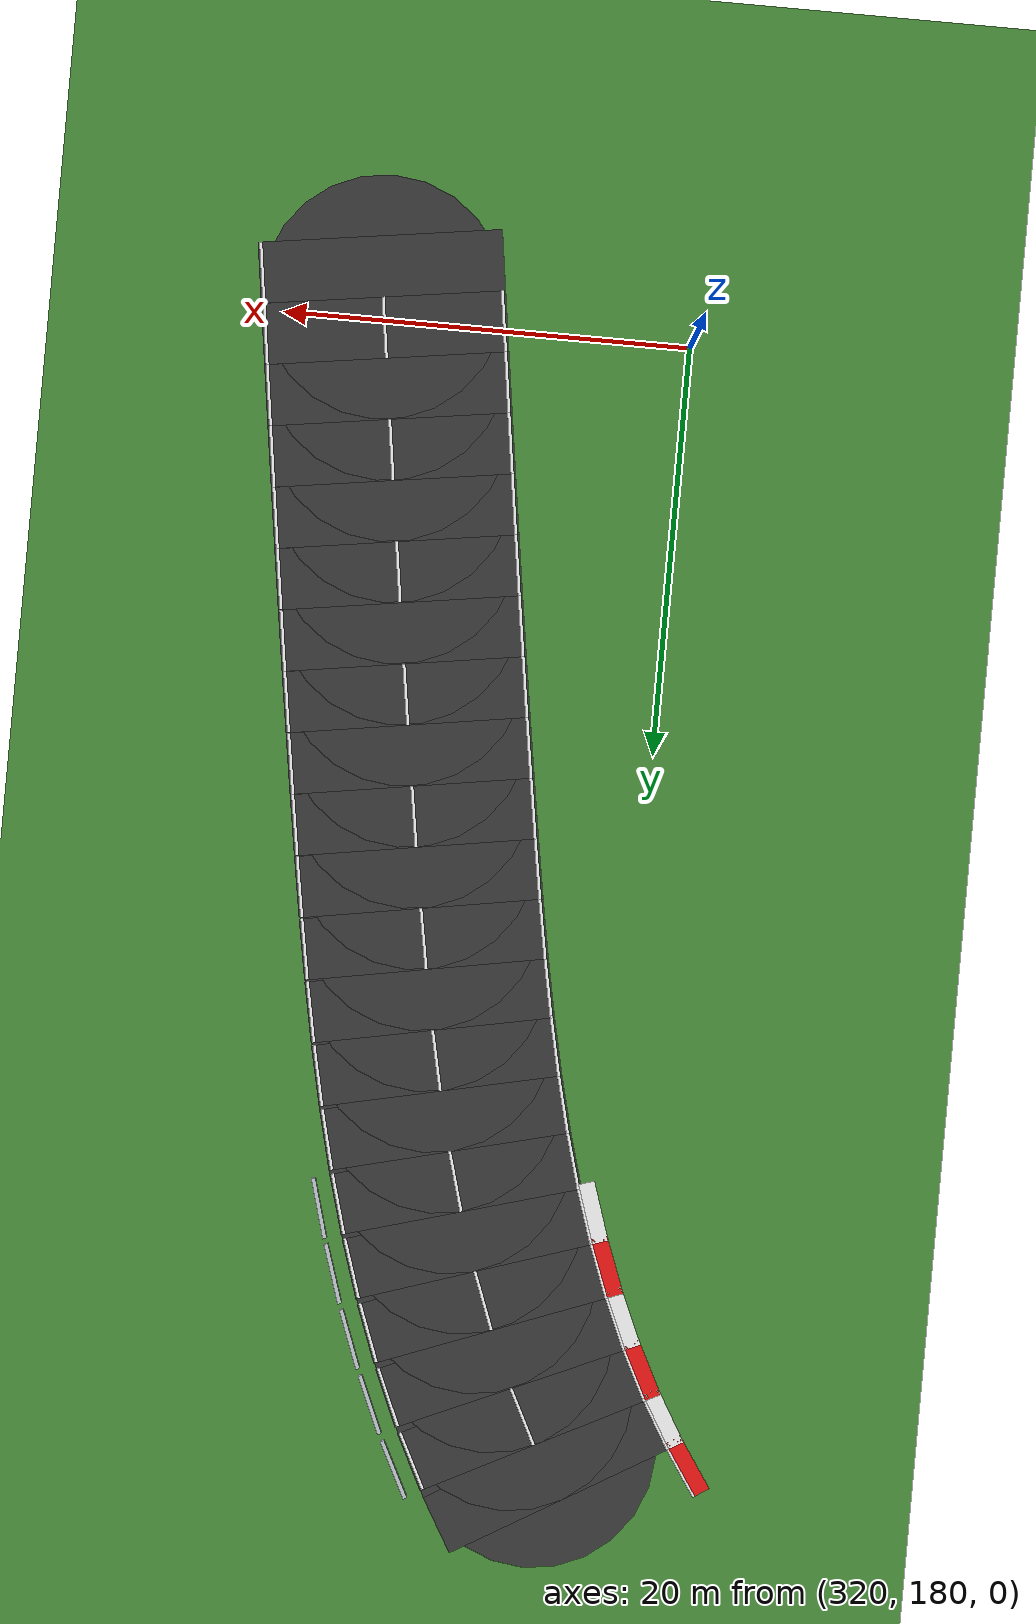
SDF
<sdf version="1.6">
 <world name="sem_silesia_ring_2026">
  <model name="ground_plane">
   <static>true</static>
   <link name="link">
    <collision name="collision">
     <geometry><plane><normal>0 0 1</normal><size>1200 1200</size></plane></geometry>
     <surface><friction><ode><mu>0.6</mu><mu2>0.6</mu2></ode></friction></surface>
    </collision>
    <visual name="visual">
     <geometry><plane><normal>0 0 1</normal><size>1200 1200</size></plane></geometry>
     <material><ambient>0.28 0.55 0.22 1</ambient><diffuse>0.28 0.55 0.22 1</diffuse></material>
    </visual>
   </link>
  </model>
  <model name="road_s177">
   <static>true</static>
   <pose>335.4171 177.3206 0.0030 0 0 1.7136</pose>
   <link name="link">
    <visual name="v">
     <geometry><box><size>3.0025 12.0000 0.0060</size></box></geometry>
     <material><ambient>0.22 0.22 0.22 1</ambient><diffuse>0.22 0.22 0.22 1</diffuse></material>
    </visual>
    <collision name="c">
     <geometry><box><size>3.0025 12.0000 0.0060</size></box></geometry>
     <surface><friction><ode><mu>0.9</mu><mu2>0.9</mu2></ode></friction></surface>
    </collision>
   </link>
  </model>
  <model name="wl_R_s177">
   <static>true</static>
   <pose>341.2076 178.1529 0.0070 0 0 1.7136</pose>
   <link name="link">
    <visual name="v">
     <geometry><box><size>3.0025 0.1500 0.0080</size></box></geometry>
     <material><ambient>0.95 0.95 0.95 1</ambient><diffuse>0.95 0.95 0.95 1</diffuse></material>
    </visual>
   </link>
  </model>
  <model name="road_s178">
   <static>true</static>
   <pose>334.9890 180.2925 0.0030 0 0 1.7142</pose>
   <link name="link">
    <visual name="v">
     <geometry><box><size>3.0025 12.0000 0.0060</size></box></geometry>
     <material><ambient>0.22 0.22 0.22 1</ambient><diffuse>0.22 0.22 0.22 1</diffuse></material>
    </visual>
    <collision name="c">
     <geometry><box><size>3.0025 12.0000 0.0060</size></box></geometry>
     <surface><friction><ode><mu>0.9</mu><mu2>0.9</mu2></ode></friction></surface>
    </collision>
   </link>
  </model>
  <model name="road_jnt178">
   <static>true</static>
   <pose>335.2035 178.8066 0.0030 0 0 0</pose>
   <link name="link">
    <visual name="v">
     <geometry><cylinder><radius>6.0000</radius><length>0.0060</length></cylinder></geometry>
     <material><ambient>0.22 0.22 0.22 1</ambient><diffuse>0.22 0.22 0.22 1</diffuse></material>
    </visual>
    <collision name="c">
     <geometry><cylinder><radius>6.0000</radius><length>0.0060</length></cylinder></geometry>
     <surface><friction><ode><mu>0.9</mu><mu2>0.9</mu2></ode></friction></surface>
    </collision>
   </link>
  </model>
  <model name="wl_L_s178">
   <static>true</static>
   <pose>329.1990 179.4565 0.0070 0 0 1.7142</pose>
   <link name="link">
    <visual name="v">
     <geometry><box><size>3.0025 0.1500 0.0080</size></box></geometry>
     <material><ambient>0.95 0.95 0.95 1</ambient><diffuse>0.95 0.95 0.95 1</diffuse></material>
    </visual>
   </link>
  </model>
  <model name="wl_R_s178">
   <static>true</static>
   <pose>340.7790 181.1284 0.0070 0 0 1.7142</pose>
   <link name="link">
    <visual name="v">
     <geometry><box><size>3.0025 0.1500 0.0080</size></box></geometry>
     <material><ambient>0.95 0.95 0.95 1</ambient><diffuse>0.95 0.95 0.95 1</diffuse></material>
    </visual>
   </link>
  </model>
  <model name="cd_s178">
   <static>true</static>
   <pose>334.9890 180.2925 0.0070 0 0 1.7142</pose>
   <link name="link">
    <visual name="v">
     <geometry><box><size>3.0025 0.1500 0.0080</size></box></geometry>
     <material><ambient>0.95 0.95 0.95 1</ambient><diffuse>0.95 0.95 0.95 1</diffuse></material>
    </visual>
   </link>
  </model>
  <model name="road_s179">
   <static>true</static>
   <pose>334.5585 183.2640 0.0030 0 0 1.7152</pose>
   <link name="link">
    <visual name="v">
     <geometry><box><size>3.0025 12.0000 0.0060</size></box></geometry>
     <material><ambient>0.22 0.22 0.22 1</ambient><diffuse>0.22 0.22 0.22 1</diffuse></material>
    </visual>
    <collision name="c">
     <geometry><box><size>3.0025 12.0000 0.0060</size></box></geometry>
     <surface><friction><ode><mu>0.9</mu><mu2>0.9</mu2></ode></friction></surface>
    </collision>
   </link>
  </model>
  <model name="road_jnt179">
   <static>true</static>
   <pose>334.7745 181.7783 0.0030 0 0 0</pose>
   <link name="link">
    <visual name="v">
     <geometry><cylinder><radius>6.0000</radius><length>0.0060</length></cylinder></geometry>
     <material><ambient>0.22 0.22 0.22 1</ambient><diffuse>0.22 0.22 0.22 1</diffuse></material>
    </visual>
    <collision name="c">
     <geometry><cylinder><radius>6.0000</radius><length>0.0060</length></cylinder></geometry>
     <surface><friction><ode><mu>0.9</mu><mu2>0.9</mu2></ode></friction></surface>
    </collision>
   </link>
  </model>
  <model name="wl_L_s179">
   <static>true</static>
   <pose>328.7694 182.4224 0.0070 0 0 1.7152</pose>
   <link name="link">
    <visual name="v">
     <geometry><box><size>3.0025 0.1500 0.0080</size></box></geometry>
     <material><ambient>0.95 0.95 0.95 1</ambient><diffuse>0.95 0.95 0.95 1</diffuse></material>
    </visual>
   </link>
  </model>
  <model name="wl_R_s179">
   <static>true</static>
   <pose>340.3477 184.1055 0.0070 0 0 1.7152</pose>
   <link name="link">
    <visual name="v">
     <geometry><box><size>3.0025 0.1500 0.0080</size></box></geometry>
     <material><ambient>0.95 0.95 0.95 1</ambient><diffuse>0.95 0.95 0.95 1</diffuse></material>
    </visual>
   </link>
  </model>
  <model name="road_s180">
   <static>true</static>
   <pose>334.1246 186.2350 0.0030 0 0 1.7165</pose>
   <link name="link">
    <visual name="v">
     <geometry><box><size>3.0025 12.0000 0.0060</size></box></geometry>
     <material><ambient>0.22 0.22 0.22 1</ambient><diffuse>0.22 0.22 0.22 1</diffuse></material>
    </visual>
    <collision name="c">
     <geometry><box><size>3.0025 12.0000 0.0060</size></box></geometry>
     <surface><friction><ode><mu>0.9</mu><mu2>0.9</mu2></ode></friction></surface>
    </collision>
   </link>
  </model>
  <model name="road_jnt180">
   <static>true</static>
   <pose>334.3425 184.7496 0.0030 0 0 0</pose>
   <link name="link">
    <visual name="v">
     <geometry><cylinder><radius>6.0000</radius><length>0.0060</length></cylinder></geometry>
     <material><ambient>0.22 0.22 0.22 1</ambient><diffuse>0.22 0.22 0.22 1</diffuse></material>
    </visual>
    <collision name="c">
     <geometry><cylinder><radius>6.0000</radius><length>0.0060</length></cylinder></geometry>
     <surface><friction><ode><mu>0.9</mu><mu2>0.9</mu2></ode></friction></surface>
    </collision>
   </link>
  </model>
  <model name="wl_L_s180">
   <static>true</static>
   <pose>328.3366 185.3858 0.0070 0 0 1.7165</pose>
   <link name="link">
    <visual name="v">
     <geometry><box><size>3.0025 0.1500 0.0080</size></box></geometry>
     <material><ambient>0.95 0.95 0.95 1</ambient><diffuse>0.95 0.95 0.95 1</diffuse></material>
    </visual>
   </link>
  </model>
  <model name="wl_R_s180">
   <static>true</static>
   <pose>339.9127 187.0842 0.0070 0 0 1.7165</pose>
   <link name="link">
    <visual name="v">
     <geometry><box><size>3.0025 0.1500 0.0080</size></box></geometry>
     <material><ambient>0.95 0.95 0.95 1</ambient><diffuse>0.95 0.95 0.95 1</diffuse></material>
    </visual>
   </link>
  </model>
  <model name="cd_s180">
   <static>true</static>
   <pose>334.1246 186.2350 0.0070 0 0 1.7165</pose>
   <link name="link">
    <visual name="v">
     <geometry><box><size>3.0025 0.1500 0.0080</size></box></geometry>
     <material><ambient>0.95 0.95 0.95 1</ambient><diffuse>0.95 0.95 0.95 1</diffuse></material>
    </visual>
   </link>
  </model>
  <model name="road_s181">
   <static>true</static>
   <pose>333.6863 189.2054 0.0030 0 0 1.7181</pose>
   <link name="link">
    <visual name="v">
     <geometry><box><size>3.0025 12.0000 0.0060</size></box></geometry>
     <material><ambient>0.22 0.22 0.22 1</ambient><diffuse>0.22 0.22 0.22 1</diffuse></material>
    </visual>
    <collision name="c">
     <geometry><box><size>3.0025 12.0000 0.0060</size></box></geometry>
     <surface><friction><ode><mu>0.9</mu><mu2>0.9</mu2></ode></friction></surface>
    </collision>
   </link>
  </model>
  <model name="road_jnt181">
   <static>true</static>
   <pose>333.9067 187.7204 0.0030 0 0 0</pose>
   <link name="link">
    <visual name="v">
     <geometry><cylinder><radius>6.0000</radius><length>0.0060</length></cylinder></geometry>
     <material><ambient>0.22 0.22 0.22 1</ambient><diffuse>0.22 0.22 0.22 1</diffuse></material>
    </visual>
    <collision name="c">
     <geometry><cylinder><radius>6.0000</radius><length>0.0060</length></cylinder></geometry>
     <surface><friction><ode><mu>0.9</mu><mu2>0.9</mu2></ode></friction></surface>
    </collision>
   </link>
  </model>
  <model name="wl_L_s181">
   <static>true</static>
   <pose>327.8997 188.3466 0.0070 0 0 1.7181</pose>
   <link name="link">
    <visual name="v">
     <geometry><box><size>3.0025 0.1500 0.0080</size></box></geometry>
     <material><ambient>0.95 0.95 0.95 1</ambient><diffuse>0.95 0.95 0.95 1</diffuse></material>
    </visual>
   </link>
  </model>
  <model name="wl_R_s181">
   <static>true</static>
   <pose>339.4730 190.0641 0.0070 0 0 1.7181</pose>
   <link name="link">
    <visual name="v">
     <geometry><box><size>3.0025 0.1500 0.0080</size></box></geometry>
     <material><ambient>0.95 0.95 0.95 1</ambient><diffuse>0.95 0.95 0.95 1</diffuse></material>
    </visual>
   </link>
  </model>
  <model name="road_s182">
   <static>true</static>
   <pose>333.2426 192.1749 0.0030 0 0 1.7201</pose>
   <link name="link">
    <visual name="v">
     <geometry><box><size>3.0025 12.0000 0.0060</size></box></geometry>
     <material><ambient>0.22 0.22 0.22 1</ambient><diffuse>0.22 0.22 0.22 1</diffuse></material>
    </visual>
    <collision name="c">
     <geometry><box><size>3.0025 12.0000 0.0060</size></box></geometry>
     <surface><friction><ode><mu>0.9</mu><mu2>0.9</mu2></ode></friction></surface>
    </collision>
   </link>
  </model>
  <model name="road_jnt182">
   <static>true</static>
   <pose>333.4659 190.6904 0.0030 0 0 0</pose>
   <link name="link">
    <visual name="v">
     <geometry><cylinder><radius>6.0000</radius><length>0.0060</length></cylinder></geometry>
     <material><ambient>0.22 0.22 0.22 1</ambient><diffuse>0.22 0.22 0.22 1</diffuse></material>
    </visual>
    <collision name="c">
     <geometry><cylinder><radius>6.0000</radius><length>0.0060</length></cylinder></geometry>
     <surface><friction><ode><mu>0.9</mu><mu2>0.9</mu2></ode></friction></surface>
    </collision>
   </link>
  </model>
  <model name="wl_L_s182">
   <static>true</static>
   <pose>327.4577 191.3046 0.0070 0 0 1.7201</pose>
   <link name="link">
    <visual name="v">
     <geometry><box><size>3.0025 0.1500 0.0080</size></box></geometry>
     <material><ambient>0.95 0.95 0.95 1</ambient><diffuse>0.95 0.95 0.95 1</diffuse></material>
    </visual>
   </link>
  </model>
  <model name="wl_R_s182">
   <static>true</static>
   <pose>339.0275 193.0452 0.0070 0 0 1.7201</pose>
   <link name="link">
    <visual name="v">
     <geometry><box><size>3.0025 0.1500 0.0080</size></box></geometry>
     <material><ambient>0.95 0.95 0.95 1</ambient><diffuse>0.95 0.95 0.95 1</diffuse></material>
    </visual>
   </link>
  </model>
  <model name="cd_s182">
   <static>true</static>
   <pose>333.2426 192.1749 0.0070 0 0 1.7201</pose>
   <link name="link">
    <visual name="v">
     <geometry><box><size>3.0025 0.1500 0.0080</size></box></geometry>
     <material><ambient>0.95 0.95 0.95 1</ambient><diffuse>0.95 0.95 0.95 1</diffuse></material>
    </visual>
   </link>
  </model>
  <model name="road_s183">
   <static>true</static>
   <pose>332.7925 195.1435 0.0030 0 0 1.7225</pose>
   <link name="link">
    <visual name="v">
     <geometry><box><size>3.0025 12.0000 0.0060</size></box></geometry>
     <material><ambient>0.22 0.22 0.22 1</ambient><diffuse>0.22 0.22 0.22 1</diffuse></material>
    </visual>
    <collision name="c">
     <geometry><box><size>3.0025 12.0000 0.0060</size></box></geometry>
     <surface><friction><ode><mu>0.9</mu><mu2>0.9</mu2></ode></friction></surface>
    </collision>
   </link>
  </model>
  <model name="road_jnt183">
   <static>true</static>
   <pose>333.0193 193.6595 0.0030 0 0 0</pose>
   <link name="link">
    <visual name="v">
     <geometry><cylinder><radius>6.0000</radius><length>0.0060</length></cylinder></geometry>
     <material><ambient>0.22 0.22 0.22 1</ambient><diffuse>0.22 0.22 0.22 1</diffuse></material>
    </visual>
    <collision name="c">
     <geometry><cylinder><radius>6.0000</radius><length>0.0060</length></cylinder></geometry>
     <surface><friction><ode><mu>0.9</mu><mu2>0.9</mu2></ode></friction></surface>
    </collision>
   </link>
  </model>
  <model name="wl_L_s183">
   <static>true</static>
   <pose>327.0096 194.2598 0.0070 0 0 1.7225</pose>
   <link name="link">
    <visual name="v">
     <geometry><box><size>3.0025 0.1500 0.0080</size></box></geometry>
     <material><ambient>0.95 0.95 0.95 1</ambient><diffuse>0.95 0.95 0.95 1</diffuse></material>
    </visual>
   </link>
  </model>
  <model name="wl_R_s183">
   <static>true</static>
   <pose>338.5753 196.0273 0.0070 0 0 1.7225</pose>
   <link name="link">
    <visual name="v">
     <geometry><box><size>3.0025 0.1500 0.0080</size></box></geometry>
     <material><ambient>0.95 0.95 0.95 1</ambient><diffuse>0.95 0.95 0.95 1</diffuse></material>
    </visual>
   </link>
  </model>
  <model name="road_s184">
   <static>true</static>
   <pose>332.3349 198.1110 0.0030 0 0 1.7251</pose>
   <link name="link">
    <visual name="v">
     <geometry><box><size>3.0025 12.0000 0.0060</size></box></geometry>
     <material><ambient>0.22 0.22 0.22 1</ambient><diffuse>0.22 0.22 0.22 1</diffuse></material>
    </visual>
    <collision name="c">
     <geometry><box><size>3.0025 12.0000 0.0060</size></box></geometry>
     <surface><friction><ode><mu>0.9</mu><mu2>0.9</mu2></ode></friction></surface>
    </collision>
   </link>
  </model>
  <model name="road_jnt184">
   <static>true</static>
   <pose>332.5657 196.6276 0.0030 0 0 0</pose>
   <link name="link">
    <visual name="v">
     <geometry><cylinder><radius>6.0000</radius><length>0.0060</length></cylinder></geometry>
     <material><ambient>0.22 0.22 0.22 1</ambient><diffuse>0.22 0.22 0.22 1</diffuse></material>
    </visual>
    <collision name="c">
     <geometry><cylinder><radius>6.0000</radius><length>0.0060</length></cylinder></geometry>
     <surface><friction><ode><mu>0.9</mu><mu2>0.9</mu2></ode></friction></surface>
    </collision>
   </link>
  </model>
  <model name="wl_L_s184">
   <static>true</static>
   <pose>326.5544 197.2118 0.0070 0 0 1.7251</pose>
   <link name="link">
    <visual name="v">
     <geometry><box><size>3.0025 0.1500 0.0080</size></box></geometry>
     <material><ambient>0.95 0.95 0.95 1</ambient><diffuse>0.95 0.95 0.95 1</diffuse></material>
    </visual>
   </link>
  </model>
  <model name="wl_R_s184">
   <static>true</static>
   <pose>338.1154 199.0102 0.0070 0 0 1.7251</pose>
   <link name="link">
    <visual name="v">
     <geometry><box><size>3.0025 0.1500 0.0080</size></box></geometry>
     <material><ambient>0.95 0.95 0.95 1</ambient><diffuse>0.95 0.95 0.95 1</diffuse></material>
    </visual>
   </link>
  </model>
  <model name="cd_s184">
   <static>true</static>
   <pose>332.3349 198.1110 0.0070 0 0 1.7251</pose>
   <link name="link">
    <visual name="v">
     <geometry><box><size>3.0025 0.1500 0.0080</size></box></geometry>
     <material><ambient>0.95 0.95 0.95 1</ambient><diffuse>0.95 0.95 0.95 1</diffuse></material>
    </visual>
   </link>
  </model>
  <model name="road_s185">
   <static>true</static>
   <pose>331.8690 201.0772 0.0030 0 0 1.7281</pose>
   <link name="link">
    <visual name="v">
     <geometry><box><size>3.0025 12.0000 0.0060</size></box></geometry>
     <material><ambient>0.22 0.22 0.22 1</ambient><diffuse>0.22 0.22 0.22 1</diffuse></material>
    </visual>
    <collision name="c">
     <geometry><box><size>3.0025 12.0000 0.0060</size></box></geometry>
     <surface><friction><ode><mu>0.9</mu><mu2>0.9</mu2></ode></friction></surface>
    </collision>
   </link>
  </model>
  <model name="road_jnt185">
   <static>true</static>
   <pose>332.1042 199.5944 0.0030 0 0 0</pose>
   <link name="link">
    <visual name="v">
     <geometry><cylinder><radius>6.0000</radius><length>0.0060</length></cylinder></geometry>
     <material><ambient>0.22 0.22 0.22 1</ambient><diffuse>0.22 0.22 0.22 1</diffuse></material>
    </visual>
    <collision name="c">
     <geometry><cylinder><radius>6.0000</radius><length>0.0060</length></cylinder></geometry>
     <surface><friction><ode><mu>0.9</mu><mu2>0.9</mu2></ode></friction></surface>
    </collision>
   </link>
  </model>
  <model name="wl_L_s185">
   <static>true</static>
   <pose>326.0912 200.1607 0.0070 0 0 1.7281</pose>
   <link name="link">
    <visual name="v">
     <geometry><box><size>3.0025 0.1500 0.0080</size></box></geometry>
     <material><ambient>0.95 0.95 0.95 1</ambient><diffuse>0.95 0.95 0.95 1</diffuse></material>
    </visual>
   </link>
  </model>
  <model name="wl_R_s185">
   <static>true</static>
   <pose>337.6467 201.9936 0.0070 0 0 1.7281</pose>
   <link name="link">
    <visual name="v">
     <geometry><box><size>3.0025 0.1500 0.0080</size></box></geometry>
     <material><ambient>0.95 0.95 0.95 1</ambient><diffuse>0.95 0.95 0.95 1</diffuse></material>
    </visual>
   </link>
  </model>
  <model name="road_s186">
   <static>true</static>
   <pose>331.3936 204.0418 0.0030 0 0 1.7315</pose>
   <link name="link">
    <visual name="v">
     <geometry><box><size>3.0025 12.0000 0.0060</size></box></geometry>
     <material><ambient>0.22 0.22 0.22 1</ambient><diffuse>0.22 0.22 0.22 1</diffuse></material>
    </visual>
    <collision name="c">
     <geometry><box><size>3.0025 12.0000 0.0060</size></box></geometry>
     <surface><friction><ode><mu>0.9</mu><mu2>0.9</mu2></ode></friction></surface>
    </collision>
   </link>
  </model>
  <model name="road_jnt186">
   <static>true</static>
   <pose>331.6338 202.5599 0.0030 0 0 0</pose>
   <link name="link">
    <visual name="v">
     <geometry><cylinder><radius>6.0000</radius><length>0.0060</length></cylinder></geometry>
     <material><ambient>0.22 0.22 0.22 1</ambient><diffuse>0.22 0.22 0.22 1</diffuse></material>
    </visual>
    <collision name="c">
     <geometry><cylinder><radius>6.0000</radius><length>0.0060</length></cylinder></geometry>
     <surface><friction><ode><mu>0.9</mu><mu2>0.9</mu2></ode></friction></surface>
    </collision>
   </link>
  </model>
  <model name="wl_L_s186">
   <static>true</static>
   <pose>325.6190 203.1058 0.0070 0 0 1.7315</pose>
   <link name="link">
    <visual name="v">
     <geometry><box><size>3.0025 0.1500 0.0080</size></box></geometry>
     <material><ambient>0.95 0.95 0.95 1</ambient><diffuse>0.95 0.95 0.95 1</diffuse></material>
    </visual>
   </link>
  </model>
  <model name="wl_R_s186">
   <static>true</static>
   <pose>337.1682 204.9778 0.0070 0 0 1.7315</pose>
   <link name="link">
    <visual name="v">
     <geometry><box><size>3.0025 0.1500 0.0080</size></box></geometry>
     <material><ambient>0.95 0.95 0.95 1</ambient><diffuse>0.95 0.95 0.95 1</diffuse></material>
    </visual>
   </link>
  </model>
  <model name="cd_s186">
   <static>true</static>
   <pose>331.3936 204.0418 0.0070 0 0 1.7315</pose>
   <link name="link">
    <visual name="v">
     <geometry><box><size>3.0025 0.1500 0.0080</size></box></geometry>
     <material><ambient>0.95 0.95 0.95 1</ambient><diffuse>0.95 0.95 0.95 1</diffuse></material>
    </visual>
   </link>
  </model>
  <model name="road_s187">
   <static>true</static>
   <pose>330.9042 207.0042 0.0030 0 0 1.7375</pose>
   <link name="link">
    <visual name="v">
     <geometry><box><size>3.0025 12.0000 0.0060</size></box></geometry>
     <material><ambient>0.22 0.22 0.22 1</ambient><diffuse>0.22 0.22 0.22 1</diffuse></material>
    </visual>
    <collision name="c">
     <geometry><box><size>3.0025 12.0000 0.0060</size></box></geometry>
     <surface><friction><ode><mu>0.9</mu><mu2>0.9</mu2></ode></friction></surface>
    </collision>
   </link>
  </model>
  <model name="road_jnt187">
   <static>true</static>
   <pose>331.1534 205.5237 0.0030 0 0 0</pose>
   <link name="link">
    <visual name="v">
     <geometry><cylinder><radius>6.0000</radius><length>0.0060</length></cylinder></geometry>
     <material><ambient>0.22 0.22 0.22 1</ambient><diffuse>0.22 0.22 0.22 1</diffuse></material>
    </visual>
    <collision name="c">
     <geometry><cylinder><radius>6.0000</radius><length>0.0060</length></cylinder></geometry>
     <surface><friction><ode><mu>0.9</mu><mu2>0.9</mu2></ode></friction></surface>
    </collision>
   </link>
  </model>
  <model name="wl_L_s187">
   <static>true</static>
   <pose>325.1354 206.0332 0.0070 0 0 1.7375</pose>
   <link name="link">
    <visual name="v">
     <geometry><box><size>3.0025 0.1500 0.0080</size></box></geometry>
     <material><ambient>0.95 0.95 0.95 1</ambient><diffuse>0.95 0.95 0.95 1</diffuse></material>
    </visual>
   </link>
  </model>
  <model name="wl_R_s187">
   <static>true</static>
   <pose>336.6731 207.9752 0.0070 0 0 1.7375</pose>
   <link name="link">
    <visual name="v">
     <geometry><box><size>3.0025 0.1500 0.0080</size></box></geometry>
     <material><ambient>0.95 0.95 0.95 1</ambient><diffuse>0.95 0.95 0.95 1</diffuse></material>
    </visual>
   </link>
  </model>
  <model name="road_s188">
   <static>true</static>
   <pose>330.3892 209.9622 0.0030 0 0 1.7488</pose>
   <link name="link">
    <visual name="v">
     <geometry><box><size>3.0025 12.0000 0.0060</size></box></geometry>
     <material><ambient>0.22 0.22 0.22 1</ambient><diffuse>0.22 0.22 0.22 1</diffuse></material>
    </visual>
    <collision name="c">
     <geometry><box><size>3.0025 12.0000 0.0060</size></box></geometry>
     <surface><friction><ode><mu>0.9</mu><mu2>0.9</mu2></ode></friction></surface>
    </collision>
   </link>
  </model>
  <model name="road_jnt188">
   <static>true</static>
   <pose>330.6550 208.4846 0.0030 0 0 0</pose>
   <link name="link">
    <visual name="v">
     <geometry><cylinder><radius>6.0000</radius><length>0.0060</length></cylinder></geometry>
     <material><ambient>0.22 0.22 0.22 1</ambient><diffuse>0.22 0.22 0.22 1</diffuse></material>
    </visual>
    <collision name="c">
     <geometry><cylinder><radius>6.0000</radius><length>0.0060</length></cylinder></geometry>
     <surface><friction><ode><mu>0.9</mu><mu2>0.9</mu2></ode></friction></surface>
    </collision>
   </link>
  </model>
  <model name="wl_L_s188">
   <static>true</static>
   <pose>324.6316 208.9263 0.0070 0 0 1.7488</pose>
   <link name="link">
    <visual name="v">
     <geometry><box><size>3.0025 0.1500 0.0080</size></box></geometry>
     <material><ambient>0.95 0.95 0.95 1</ambient><diffuse>0.95 0.95 0.95 1</diffuse></material>
    </visual>
   </link>
  </model>
  <model name="wl_R_s188">
   <static>true</static>
   <pose>336.1468 210.9980 0.0070 0 0 1.7488</pose>
   <link name="link">
    <visual name="v">
     <geometry><box><size>3.0025 0.1500 0.0080</size></box></geometry>
     <material><ambient>0.95 0.95 0.95 1</ambient><diffuse>0.95 0.95 0.95 1</diffuse></material>
    </visual>
   </link>
  </model>
  <model name="cd_s188">
   <static>true</static>
   <pose>330.3892 209.9622 0.0070 0 0 1.7488</pose>
   <link name="link">
    <visual name="v">
     <geometry><box><size>3.0025 0.1500 0.0080</size></box></geometry>
     <material><ambient>0.95 0.95 0.95 1</ambient><diffuse>0.95 0.95 0.95 1</diffuse></material>
    </visual>
   </link>
  </model>
  <model name="road_s189">
   <static>true</static>
   <pose>329.8330 212.9126 0.0030 0 0 1.7654</pose>
   <link name="link">
    <visual name="v">
     <geometry><box><size>3.0025 12.0000 0.0060</size></box></geometry>
     <material><ambient>0.22 0.22 0.22 1</ambient><diffuse>0.22 0.22 0.22 1</diffuse></material>
    </visual>
    <collision name="c">
     <geometry><box><size>3.0025 12.0000 0.0060</size></box></geometry>
     <surface><friction><ode><mu>0.9</mu><mu2>0.9</mu2></ode></friction></surface>
    </collision>
   </link>
  </model>
  <model name="road_jnt189">
   <static>true</static>
   <pose>330.1234 211.4397 0.0030 0 0 0</pose>
   <link name="link">
    <visual name="v">
     <geometry><cylinder><radius>6.0000</radius><length>0.0060</length></cylinder></geometry>
     <material><ambient>0.22 0.22 0.22 1</ambient><diffuse>0.22 0.22 0.22 1</diffuse></material>
    </visual>
    <collision name="c">
     <geometry><cylinder><radius>6.0000</radius><length>0.0060</length></cylinder></geometry>
     <surface><friction><ode><mu>0.9</mu><mu2>0.9</mu2></ode></friction></surface>
    </collision>
   </link>
  </model>
  <model name="wl_L_s189">
   <static>true</static>
   <pose>324.0935 211.7812 0.0070 0 0 1.7654</pose>
   <link name="link">
    <visual name="v">
     <geometry><box><size>3.0025 0.1500 0.0080</size></box></geometry>
     <material><ambient>0.95 0.95 0.95 1</ambient><diffuse>0.95 0.95 0.95 1</diffuse></material>
    </visual>
   </link>
  </model>
  <model name="wl_R_s189">
   <static>true</static>
   <pose>335.5726 214.0440 0.0070 0 0 1.7654</pose>
   <link name="link">
    <visual name="v">
     <geometry><box><size>3.0025 0.1500 0.0080</size></box></geometry>
     <material><ambient>0.95 0.95 0.95 1</ambient><diffuse>0.95 0.95 0.95 1</diffuse></material>
    </visual>
   </link>
  </model>
  <model name="road_s190">
   <static>true</static>
   <pose>329.2198 215.8516 0.0030 0 0 1.7875</pose>
   <link name="link">
    <visual name="v">
     <geometry><box><size>3.0025 12.0000 0.0060</size></box></geometry>
     <material><ambient>0.22 0.22 0.22 1</ambient><diffuse>0.22 0.22 0.22 1</diffuse></material>
    </visual>
    <collision name="c">
     <geometry><box><size>3.0025 12.0000 0.0060</size></box></geometry>
     <surface><friction><ode><mu>0.9</mu><mu2>0.9</mu2></ode></friction></surface>
    </collision>
   </link>
  </model>
  <model name="road_jnt190">
   <static>true</static>
   <pose>329.5427 214.3855 0.0030 0 0 0</pose>
   <link name="link">
    <visual name="v">
     <geometry><cylinder><radius>6.0000</radius><length>0.0060</length></cylinder></geometry>
     <material><ambient>0.22 0.22 0.22 1</ambient><diffuse>0.22 0.22 0.22 1</diffuse></material>
    </visual>
    <collision name="c">
     <geometry><cylinder><radius>6.0000</radius><length>0.0060</length></cylinder></geometry>
     <surface><friction><ode><mu>0.9</mu><mu2>0.9</mu2></ode></friction></surface>
    </collision>
   </link>
  </model>
  <model name="wl_L_s190">
   <static>true</static>
   <pose>323.5067 214.5935 0.0070 0 0 1.7875</pose>
   <link name="link">
    <visual name="v">
     <geometry><box><size>3.0025 0.1500 0.0080</size></box></geometry>
     <material><ambient>0.95 0.95 0.95 1</ambient><diffuse>0.95 0.95 0.95 1</diffuse></material>
    </visual>
   </link>
  </model>
  <model name="wl_R_s190">
   <static>true</static>
   <pose>334.9330 217.1097 0.0070 0 0 1.7875</pose>
   <link name="link">
    <visual name="v">
     <geometry><box><size>3.0025 0.1500 0.0080</size></box></geometry>
     <material><ambient>0.95 0.95 0.95 1</ambient><diffuse>0.95 0.95 0.95 1</diffuse></material>
    </visual>
   </link>
  </model>
  <model name="cd_s190">
   <static>true</static>
   <pose>329.2198 215.8516 0.0070 0 0 1.7875</pose>
   <link name="link">
    <visual name="v">
     <geometry><box><size>3.0025 0.1500 0.0080</size></box></geometry>
     <material><ambient>0.95 0.95 0.95 1</ambient><diffuse>0.95 0.95 0.95 1</diffuse></material>
    </visual>
   </link>
  </model>
  <model name="road_s191">
   <static>true</static>
   <pose>328.5336 218.7743 0.0030 0 0 1.8153</pose>
   <link name="link">
    <visual name="v">
     <geometry><box><size>3.0024 12.0000 0.0060</size></box></geometry>
     <material><ambient>0.22 0.22 0.22 1</ambient><diffuse>0.22 0.22 0.22 1</diffuse></material>
    </visual>
    <collision name="c">
     <geometry><box><size>3.0024 12.0000 0.0060</size></box></geometry>
     <surface><friction><ode><mu>0.9</mu><mu2>0.9</mu2></ode></friction></surface>
    </collision>
   </link>
  </model>
  <model name="road_jnt191">
   <static>true</static>
   <pose>328.8970 217.3177 0.0030 0 0 0</pose>
   <link name="link">
    <visual name="v">
     <geometry><cylinder><radius>6.0000</radius><length>0.0060</length></cylinder></geometry>
     <material><ambient>0.22 0.22 0.22 1</ambient><diffuse>0.22 0.22 0.22 1</diffuse></material>
    </visual>
    <collision name="c">
     <geometry><cylinder><radius>6.0000</radius><length>0.0060</length></cylinder></geometry>
     <surface><friction><ode><mu>0.9</mu><mu2>0.9</mu2></ode></friction></surface>
    </collision>
   </link>
  </model>
  <model name="wl_L_s191">
   <static>true</static>
   <pose>322.8576 217.3580 0.0070 0 0 1.8153</pose>
   <link name="link">
    <visual name="v">
     <geometry><box><size>3.0024 0.1500 0.0080</size></box></geometry>
     <material><ambient>0.95 0.95 0.95 1</ambient><diffuse>0.95 0.95 0.95 1</diffuse></material>
    </visual>
   </link>
  </model>
  <model name="wl_R_s191">
   <static>true</static>
   <pose>334.2096 220.1905 0.0070 0 0 1.8153</pose>
   <link name="link">
    <visual name="v">
     <geometry><box><size>3.0024 0.1500 0.0080</size></box></geometry>
     <material><ambient>0.95 0.95 0.95 1</ambient><diffuse>0.95 0.95 0.95 1</diffuse></material>
    </visual>
   </link>
  </model>
  <model name="road_s192">
   <static>true</static>
   <pose>327.7580 221.6743 0.0030 0 0 1.8489</pose>
   <link name="link">
    <visual name="v">
     <geometry><box><size>3.0024 12.0000 0.0060</size></box></geometry>
     <material><ambient>0.22 0.22 0.22 1</ambient><diffuse>0.22 0.22 0.22 1</diffuse></material>
    </visual>
    <collision name="c">
     <geometry><box><size>3.0024 12.0000 0.0060</size></box></geometry>
     <surface><friction><ode><mu>0.9</mu><mu2>0.9</mu2></ode></friction></surface>
    </collision>
   </link>
  </model>
  <model name="road_jnt192">
   <static>true</static>
   <pose>328.1701 220.2308 0.0030 0 0 0</pose>
   <link name="link">
    <visual name="v">
     <geometry><cylinder><radius>6.0000</radius><length>0.0060</length></cylinder></geometry>
     <material><ambient>0.22 0.22 0.22 1</ambient><diffuse>0.22 0.22 0.22 1</diffuse></material>
    </visual>
    <collision name="c">
     <geometry><cylinder><radius>6.0000</radius><length>0.0060</length></cylinder></geometry>
     <surface><friction><ode><mu>0.9</mu><mu2>0.9</mu2></ode></friction></surface>
    </collision>
   </link>
  </model>
  <model name="wl_L_s192">
   <static>true</static>
   <pose>322.1328 220.0684 0.0070 0 0 1.8489</pose>
   <link name="link">
    <visual name="v">
     <geometry><box><size>3.0024 0.1500 0.0080</size></box></geometry>
     <material><ambient>0.95 0.95 0.95 1</ambient><diffuse>0.95 0.95 0.95 1</diffuse></material>
    </visual>
   </link>
  </model>
  <model name="wl_R_s192">
   <static>true</static>
   <pose>333.3833 223.2803 0.0070 0 0 1.8489</pose>
   <link name="link">
    <visual name="v">
     <geometry><box><size>3.0024 0.1500 0.0080</size></box></geometry>
     <material><ambient>0.95 0.95 0.95 1</ambient><diffuse>0.95 0.95 0.95 1</diffuse></material>
    </visual>
   </link>
  </model>
  <model name="cd_s192">
   <static>true</static>
   <pose>327.7580 221.6743 0.0070 0 0 1.8489</pose>
   <link name="link">
    <visual name="v">
     <geometry><box><size>3.0024 0.1500 0.0080</size></box></geometry>
     <material><ambient>0.95 0.95 0.95 1</ambient><diffuse>0.95 0.95 0.95 1</diffuse></material>
    </visual>
   </link>
  </model>
  <model name="arm_outR_192">
   <static>true</static>
   <pose>334.2968 223.5410 0.4000 0 0 1.8489</pose>
   <link name="link">
    <visual name="v">
     <geometry><box><size>3.0024 0.2000 0.8000</size></box></geometry>
     <material><ambient>0.75 0.77 0.80 1</ambient><diffuse>0.75 0.77 0.80 1</diffuse></material>
    </visual>
    <collision name="c">
     <geometry><box><size>3.0024 0.2000 0.8000</size></box></geometry>
     <surface><friction><ode><mu>0.8</mu><mu2>0.8</mu2></ode></friction></surface>
    </collision>
   </link>
  </model>
  <model name="road_s193">
   <static>true</static>
   <pose>326.8772 224.5439 0.0030 0 0 1.8884</pose>
   <link name="link">
    <visual name="v">
     <geometry><box><size>3.0023 12.0000 0.0060</size></box></geometry>
     <material><ambient>0.22 0.22 0.22 1</ambient><diffuse>0.22 0.22 0.22 1</diffuse></material>
    </visual>
    <collision name="c">
     <geometry><box><size>3.0023 12.0000 0.0060</size></box></geometry>
     <surface><friction><ode><mu>0.9</mu><mu2>0.9</mu2></ode></friction></surface>
    </collision>
   </link>
  </model>
  <model name="road_jnt193">
   <static>true</static>
   <pose>327.3459 223.1178 0.0030 0 0 0</pose>
   <link name="link">
    <visual name="v">
     <geometry><cylinder><radius>6.0000</radius><length>0.0060</length></cylinder></geometry>
     <material><ambient>0.22 0.22 0.22 1</ambient><diffuse>0.22 0.22 0.22 1</diffuse></material>
    </visual>
    <collision name="c">
     <geometry><cylinder><radius>6.0000</radius><length>0.0060</length></cylinder></geometry>
     <surface><friction><ode><mu>0.9</mu><mu2>0.9</mu2></ode></friction></surface>
    </collision>
   </link>
  </model>
  <model name="wl_L_s193">
   <static>true</static>
   <pose>321.3197 222.7172 0.0070 0 0 1.8884</pose>
   <link name="link">
    <visual name="v">
     <geometry><box><size>3.0023 0.1500 0.0080</size></box></geometry>
     <material><ambient>0.95 0.95 0.95 1</ambient><diffuse>0.95 0.95 0.95 1</diffuse></material>
    </visual>
   </link>
  </model>
  <model name="wl_R_s193">
   <static>true</static>
   <pose>332.4347 226.3707 0.0070 0 0 1.8884</pose>
   <link name="link">
    <visual name="v">
     <geometry><box><size>3.0023 0.1500 0.0080</size></box></geometry>
     <material><ambient>0.95 0.95 0.95 1</ambient><diffuse>0.95 0.95 0.95 1</diffuse></material>
    </visual>
   </link>
  </model>
  <model name="kerb_L_193">
   <static>true</static>
   <pose>320.8922 222.5767 0.0120 0 0 1.8884</pose>
   <link name="link">
    <visual name="v">
     <geometry><box><size>3.0023 0.8000 0.0160</size></box></geometry>
     <material><ambient>0.95 0.95 0.95 1</ambient><diffuse>0.95 0.95 0.95 1</diffuse></material>
    </visual>
   </link>
  </model>
  <model name="arm_outR_193">
   <static>true</static>
   <pose>333.3372 226.6673 0.4000 0 0 1.8884</pose>
   <link name="link">
    <visual name="v">
     <geometry><box><size>3.0023 0.2000 0.8000</size></box></geometry>
     <material><ambient>0.75 0.77 0.80 1</ambient><diffuse>0.75 0.77 0.80 1</diffuse></material>
    </visual>
    <collision name="c">
     <geometry><box><size>3.0023 0.2000 0.8000</size></box></geometry>
     <surface><friction><ode><mu>0.8</mu><mu2>0.8</mu2></ode></friction></surface>
    </collision>
   </link>
  </model>
  <model name="road_s194">
   <static>true</static>
   <pose>325.8754 227.3733 0.0030 0 0 1.9338</pose>
   <link name="link">
    <visual name="v">
     <geometry><box><size>3.0022 12.0000 0.0060</size></box></geometry>
     <material><ambient>0.22 0.22 0.22 1</ambient><diffuse>0.22 0.22 0.22 1</diffuse></material>
    </visual>
    <collision name="c">
     <geometry><box><size>3.0022 12.0000 0.0060</size></box></geometry>
     <surface><friction><ode><mu>0.9</mu><mu2>0.9</mu2></ode></friction></surface>
    </collision>
   </link>
  </model>
  <model name="road_jnt194">
   <static>true</static>
   <pose>326.4084 225.9700 0.0030 0 0 0</pose>
   <link name="link">
    <visual name="v">
     <geometry><cylinder><radius>6.0000</radius><length>0.0060</length></cylinder></geometry>
     <material><ambient>0.22 0.22 0.22 1</ambient><diffuse>0.22 0.22 0.22 1</diffuse></material>
    </visual>
    <collision name="c">
     <geometry><cylinder><radius>6.0000</radius><length>0.0060</length></cylinder></geometry>
     <surface><friction><ode><mu>0.9</mu><mu2>0.9</mu2></ode></friction></surface>
    </collision>
   </link>
  </model>
  <model name="wl_L_s194">
   <static>true</static>
   <pose>320.4066 225.2962 0.0070 0 0 1.9338</pose>
   <link name="link">
    <visual name="v">
     <geometry><box><size>3.0022 0.1500 0.0080</size></box></geometry>
     <material><ambient>0.95 0.95 0.95 1</ambient><diffuse>0.95 0.95 0.95 1</diffuse></material>
    </visual>
   </link>
  </model>
  <model name="wl_R_s194">
   <static>true</static>
   <pose>331.3442 229.4505 0.0070 0 0 1.9338</pose>
   <link name="link">
    <visual name="v">
     <geometry><box><size>3.0022 0.1500 0.0080</size></box></geometry>
     <material><ambient>0.95 0.95 0.95 1</ambient><diffuse>0.95 0.95 0.95 1</diffuse></material>
    </visual>
   </link>
  </model>
  <model name="cd_s194">
   <static>true</static>
   <pose>325.8754 227.3733 0.0070 0 0 1.9338</pose>
   <link name="link">
    <visual name="v">
     <geometry><box><size>3.0022 0.1500 0.0080</size></box></geometry>
     <material><ambient>0.95 0.95 0.95 1</ambient><diffuse>0.95 0.95 0.95 1</diffuse></material>
    </visual>
   </link>
  </model>
  <model name="kerb_L_194">
   <static>true</static>
   <pose>319.9860 225.1364 0.0120 0 0 1.9338</pose>
   <link name="link">
    <visual name="v">
     <geometry><box><size>3.0022 0.8000 0.0160</size></box></geometry>
     <material><ambient>0.92 0.08 0.08 1</ambient><diffuse>0.92 0.08 0.08 1</diffuse></material>
    </visual>
   </link>
  </model>
  <model name="arm_outR_194">
   <static>true</static>
   <pose>332.2323 229.7878 0.4000 0 0 1.9338</pose>
   <link name="link">
    <visual name="v">
     <geometry><box><size>3.0022 0.2000 0.8000</size></box></geometry>
     <material><ambient>0.75 0.77 0.80 1</ambient><diffuse>0.75 0.77 0.80 1</diffuse></material>
    </visual>
    <collision name="c">
     <geometry><box><size>3.0022 0.2000 0.8000</size></box></geometry>
     <surface><friction><ode><mu>0.8</mu><mu2>0.8</mu2></ode></friction></surface>
    </collision>
   </link>
  </model>
  <model name="road_s195">
   <static>true</static>
   <pose>324.7383 230.1508 0.0030 0 0 1.9850</pose>
   <link name="link">
    <visual name="v">
     <geometry><box><size>3.0022 12.0000 0.0060</size></box></geometry>
     <material><ambient>0.22 0.22 0.22 1</ambient><diffuse>0.22 0.22 0.22 1</diffuse></material>
    </visual>
    <collision name="c">
     <geometry><box><size>3.0022 12.0000 0.0060</size></box></geometry>
     <surface><friction><ode><mu>0.9</mu><mu2>0.9</mu2></ode></friction></surface>
    </collision>
   </link>
  </model>
  <model name="road_jnt195">
   <static>true</static>
   <pose>325.3424 228.7766 0.0030 0 0 0</pose>
   <link name="link">
    <visual name="v">
     <geometry><cylinder><radius>6.0000</radius><length>0.0060</length></cylinder></geometry>
     <material><ambient>0.22 0.22 0.22 1</ambient><diffuse>0.22 0.22 0.22 1</diffuse></material>
    </visual>
    <collision name="c">
     <geometry><cylinder><radius>6.0000</radius><length>0.0060</length></cylinder></geometry>
     <surface><friction><ode><mu>0.9</mu><mu2>0.9</mu2></ode></friction></surface>
    </collision>
   </link>
  </model>
  <model name="wl_L_s195">
   <static>true</static>
   <pose>319.3830 227.7963 0.0070 0 0 1.9850</pose>
   <link name="link">
    <visual name="v">
     <geometry><box><size>3.0022 0.1500 0.0080</size></box></geometry>
     <material><ambient>0.95 0.95 0.95 1</ambient><diffuse>0.95 0.95 0.95 1</diffuse></material>
    </visual>
   </link>
  </model>
  <model name="wl_R_s195">
   <static>true</static>
   <pose>330.0935 232.5053 0.0070 0 0 1.9850</pose>
   <link name="link">
    <visual name="v">
     <geometry><box><size>3.0022 0.1500 0.0080</size></box></geometry>
     <material><ambient>0.95 0.95 0.95 1</ambient><diffuse>0.95 0.95 0.95 1</diffuse></material>
    </visual>
   </link>
  </model>
  <model name="kerb_L_195">
   <static>true</static>
   <pose>318.9711 227.6152 0.0120 0 0 1.9850</pose>
   <link name="link">
    <visual name="v">
     <geometry><box><size>3.0022 0.8000 0.0160</size></box></geometry>
     <material><ambient>0.95 0.95 0.95 1</ambient><diffuse>0.95 0.95 0.95 1</diffuse></material>
    </visual>
   </link>
  </model>
  <model name="arm_outR_195">
   <static>true</static>
   <pose>330.9632 232.8876 0.4000 0 0 1.9850</pose>
   <link name="link">
    <visual name="v">
     <geometry><box><size>3.0022 0.2000 0.8000</size></box></geometry>
     <material><ambient>0.75 0.77 0.80 1</ambient><diffuse>0.75 0.77 0.80 1</diffuse></material>
    </visual>
    <collision name="c">
     <geometry><box><size>3.0022 0.2000 0.8000</size></box></geometry>
     <surface><friction><ode><mu>0.8</mu><mu2>0.8</mu2></ode></friction></surface>
    </collision>
   </link>
  </model>
  <model name="road_s196">
   <static>true</static>
   <pose>323.4532 232.8626 0.0030 0 0 2.0417</pose>
   <link name="link">
    <visual name="v">
     <geometry><box><size>3.0021 12.0000 0.0060</size></box></geometry>
     <material><ambient>0.22 0.22 0.22 1</ambient><diffuse>0.22 0.22 0.22 1</diffuse></material>
    </visual>
    <collision name="c">
     <geometry><box><size>3.0021 12.0000 0.0060</size></box></geometry>
     <surface><friction><ode><mu>0.9</mu><mu2>0.9</mu2></ode></friction></surface>
    </collision>
   </link>
  </model>
  <model name="road_jnt196">
   <static>true</static>
   <pose>324.1341 231.5249 0.0030 0 0 0</pose>
   <link name="link">
    <visual name="v">
     <geometry><cylinder><radius>6.0000</radius><length>0.0060</length></cylinder></geometry>
     <material><ambient>0.22 0.22 0.22 1</ambient><diffuse>0.22 0.22 0.22 1</diffuse></material>
    </visual>
    <collision name="c">
     <geometry><cylinder><radius>6.0000</radius><length>0.0060</length></cylinder></geometry>
     <surface><friction><ode><mu>0.9</mu><mu2>0.9</mu2></ode></friction></surface>
    </collision>
   </link>
  </model>
  <model name="wl_L_s196">
   <static>true</static>
   <pose>318.2398 230.2087 0.0070 0 0 2.0417</pose>
   <link name="link">
    <visual name="v">
     <geometry><box><size>3.0021 0.1500 0.0080</size></box></geometry>
     <material><ambient>0.95 0.95 0.95 1</ambient><diffuse>0.95 0.95 0.95 1</diffuse></material>
    </visual>
   </link>
  </model>
  <model name="wl_R_s196">
   <static>true</static>
   <pose>328.6665 235.5165 0.0070 0 0 2.0417</pose>
   <link name="link">
    <visual name="v">
     <geometry><box><size>3.0021 0.1500 0.0080</size></box></geometry>
     <material><ambient>0.95 0.95 0.95 1</ambient><diffuse>0.95 0.95 0.95 1</diffuse></material>
    </visual>
   </link>
  </model>
  <model name="cd_s196">
   <static>true</static>
   <pose>323.4532 232.8626 0.0070 0 0 2.0417</pose>
   <link name="link">
    <visual name="v">
     <geometry><box><size>3.0021 0.1500 0.0080</size></box></geometry>
     <material><ambient>0.95 0.95 0.95 1</ambient><diffuse>0.95 0.95 0.95 1</diffuse></material>
    </visual>
   </link>
  </model>
  <model name="kerb_L_196">
   <static>true</static>
   <pose>317.8388 230.0046 0.0120 0 0 2.0417</pose>
   <link name="link">
    <visual name="v">
     <geometry><box><size>3.0021 0.8000 0.0160</size></box></geometry>
     <material><ambient>0.92 0.08 0.08 1</ambient><diffuse>0.92 0.08 0.08 1</diffuse></material>
    </visual>
   </link>
  </model>
  <model name="arm_outR_196">
   <static>true</static>
   <pose>329.5131 235.9475 0.4000 0 0 2.0417</pose>
   <link name="link">
    <visual name="v">
     <geometry><box><size>3.0021 0.2000 0.8000</size></box></geometry>
     <material><ambient>0.75 0.77 0.80 1</ambient><diffuse>0.75 0.77 0.80 1</diffuse></material>
    </visual>
    <collision name="c">
     <geometry><box><size>3.0021 0.2000 0.8000</size></box></geometry>
     <surface><friction><ode><mu>0.8</mu><mu2>0.8</mu2></ode></friction></surface>
    </collision>
   </link>
  </model>
  <model name="road_s197">
   <static>true</static>
   <pose>322.0115 235.4943 0.0030 0 0 2.1022</pose>
   <link name="link">
    <visual name="v">
     <geometry><box><size>3.0021 12.0000 0.0060</size></box></geometry>
     <material><ambient>0.22 0.22 0.22 1</ambient><diffuse>0.22 0.22 0.22 1</diffuse></material>
    </visual>
    <collision name="c">
     <geometry><box><size>3.0021 12.0000 0.0060</size></box></geometry>
     <surface><friction><ode><mu>0.9</mu><mu2>0.9</mu2></ode></friction></surface>
    </collision>
   </link>
  </model>
  <model name="road_jnt197">
   <static>true</static>
   <pose>322.7722 234.2003 0.0030 0 0 0</pose>
   <link name="link">
    <visual name="v">
     <geometry><cylinder><radius>6.0000</radius><length>0.0060</length></cylinder></geometry>
     <material><ambient>0.22 0.22 0.22 1</ambient><diffuse>0.22 0.22 0.22 1</diffuse></material>
    </visual>
    <collision name="c">
     <geometry><cylinder><radius>6.0000</radius><length>0.0060</length></cylinder></geometry>
     <surface><friction><ode><mu>0.9</mu><mu2>0.9</mu2></ode></friction></surface>
    </collision>
   </link>
  </model>
  <model name="wl_L_s197">
   <static>true</static>
   <pose>316.9684 232.5296 0.0070 0 0 2.1022</pose>
   <link name="link">
    <visual name="v">
     <geometry><box><size>3.0021 0.1500 0.0080</size></box></geometry>
     <material><ambient>0.95 0.95 0.95 1</ambient><diffuse>0.95 0.95 0.95 1</diffuse></material>
    </visual>
   </link>
  </model>
  <model name="kerb_L_197">
   <static>true</static>
   <pose>316.5804 232.3016 0.0120 0 0 2.1022</pose>
   <link name="link">
    <visual name="v">
     <geometry><box><size>3.0021 0.8000 0.0160</size></box></geometry>
     <material><ambient>0.95 0.95 0.95 1</ambient><diffuse>0.95 0.95 0.95 1</diffuse></material>
    </visual>
   </link>
  </model>
  <model name="wl_L_s198">
   <static>true</static>
   <pose>315.5618 234.7608 0.0070 0 0 2.1643</pose>
   <link name="link">
    <visual name="v">
     <geometry><box><size>3.0020 0.1500 0.0080</size></box></geometry>
     <material><ambient>0.95 0.95 0.95 1</ambient><diffuse>0.95 0.95 0.95 1</diffuse></material>
    </visual>
   </link>
  </model>
  <model name="kerb_L_198">
   <static>true</static>
   <pose>315.1888 234.5091 0.0120 0 0 2.1643</pose>
   <link name="link">
    <visual name="v">
     <geometry><box><size>3.0020 0.8000 0.0160</size></box></geometry>
     <material><ambient>0.92 0.08 0.08 1</ambient><diffuse>0.92 0.08 0.08 1</diffuse></material>
    </visual>
   </link>
  </model>
 </world>
</sdf>
